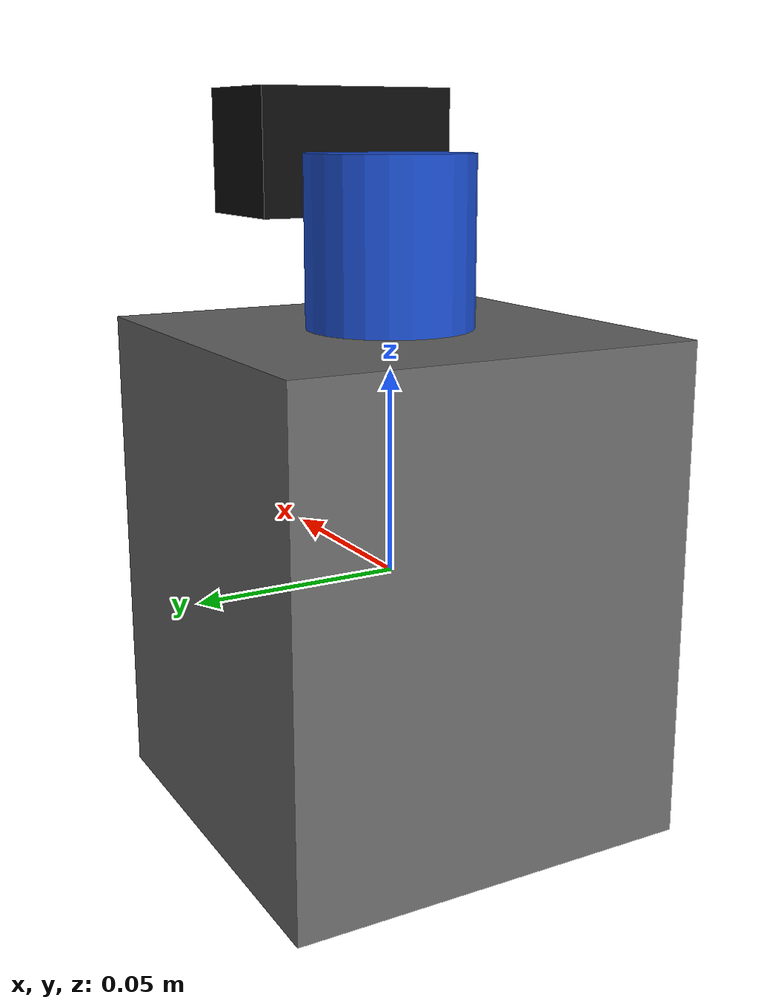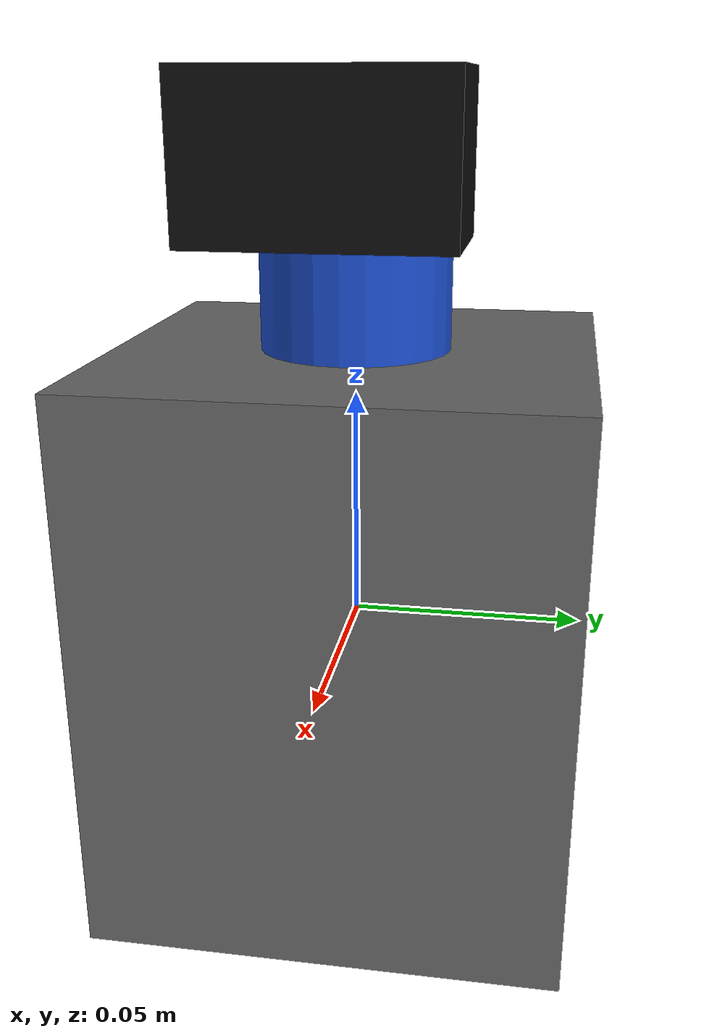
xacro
<?xml version="1.0"?>
<robot xmlns:xacro="http://www.ros.org/wiki/xacro" name="soccerbot">

  <!-- ARGUMENTS -->
  <!-- sim=true  -> load the simulation hardware interface (Isaac/Mujoco stub) -->
  <!-- sim=false -> load the real hardware interface (serial bridge to the MCU) -->
  <xacro:arg name="sim" default="true"/>
  <!-- Serial port used by the real hardware interface to reach the MCU. -->
  <xacro:arg name="serial_port" default="/dev/ttyACM0"/>

  <!-- CONSTANTS -->
  <xacro:property name="pan_limit" value="1.57"/>      <!-- +/- 90 deg -->
  <xacro:property name="pan_effort" value="3.0"/>
  <xacro:property name="pan_velocity" value="6.0"/>     <!-- rad/s -->

  <!-- MATERIALS -->
  <material name="grey"><color rgba="0.4 0.4 0.4 1.0"/></material>
  <material name="blue"><color rgba="0.1 0.3 0.8 1.0"/></material>
  <material name="black"><color rgba="0.05 0.05 0.05 1.0"/></material>

  <!-- BASE / TORSO -->
  <link name="base_link">
    <visual>
      <geometry><box size="0.10 0.10 0.12"/></geometry>
      <material name="grey"/>
    </visual>
    <collision>
      <geometry><box size="0.10 0.10 0.12"/></geometry>
    </collision>
    <inertial>
      <mass value="0.80"/>
      <inertia ixx="0.0016" ixy="0.0" ixz="0.0" iyy="0.0016" iyz="0.0" izz="0.0013"/>
    </inertial>
  </link>

  <!-- THE ONE IMU (rigidly fixed to the torso) -->
  <link name="imu_link">
    <visual>
      <geometry><box size="0.02 0.02 0.005"/></geometry>
      <material name="black"/>
    </visual>
    <inertial>
      <mass value="0.01"/>
      <inertia ixx="1e-6" ixy="0.0" ixz="0.0" iyy="1e-6" iyz="0.0" izz="1e-6"/>
    </inertial>
  </link>
  <joint name="imu_joint" type="fixed">
    <parent link="base_link"/>
    <child link="imu_link"/>
    <origin xyz="0 0 0.02" rpy="0 0 0"/>
  </joint>

  <!-- THE ONE MOTOR: neck_pan revolute joint -->
  <link name="camera_mount">
    <visual>
      <geometry><cylinder radius="0.02" length="0.04"/></geometry>
      <material name="blue"/>
    </visual>
    <inertial>
      <mass value="0.10"/>
      <inertia ixx="2e-5" ixy="0.0" ixz="0.0" iyy="2e-5" iyz="0.0" izz="2e-5"/>
    </inertial>
  </link>
  <joint name="neck_pan" type="revolute">
    <parent link="base_link"/>
    <child link="camera_mount"/>
    <origin xyz="0 0 0.08" rpy="0 0 0"/>
    <axis xyz="0 0 1"/>
    <limit lower="${-pan_limit}" upper="${pan_limit}"
           effort="${pan_effort}" velocity="${pan_velocity}"/>
    <dynamics damping="0.05" friction="0.02"/>
  </joint>

  <!-- THE ONE CAMERA (monocular; carried by the panning mount) -->
  <link name="camera_link">
    <visual>
      <geometry><box size="0.03 0.05 0.03"/></geometry>
      <material name="black"/>
    </visual>
    <inertial>
      <mass value="0.05"/>
      <inertia ixx="1e-5" ixy="0.0" ixz="0.0" iyy="1e-5" iyz="0.0" izz="1e-5"/>
    </inertial>
  </link>
  <joint name="camera_joint" type="fixed">
    <parent link="camera_mount"/>
    <child link="camera_link"/>
    <origin xyz="0.03 0 0.02" rpy="0 0 0"/>
  </joint>

  <!-- Optical frame (REP-103: z forward, x right, y down) for projection. -->
  <link name="camera_optical_frame"/>
  <joint name="camera_optical_joint" type="fixed">
    <parent link="camera_link"/>
    <child link="camera_optical_frame"/>
    <origin xyz="0 0 0" rpy="${-pi/2} 0 ${-pi/2}"/>
  </joint>

  <!-- ros2_control hardware + interfaces (the sim/real boundary) -->
  <xacro:include filename="$(find soccer_description)/urdf/soccerbot.ros2_control.xacro"/>
  <xacro:soccerbot_ros2_control
      sim="$(arg sim)"
      serial_port="$(arg serial_port)"
      pan_limit="${pan_limit}"
      pan_effort="${pan_effort}"
      pan_velocity="${pan_velocity}"/>

</robot>
